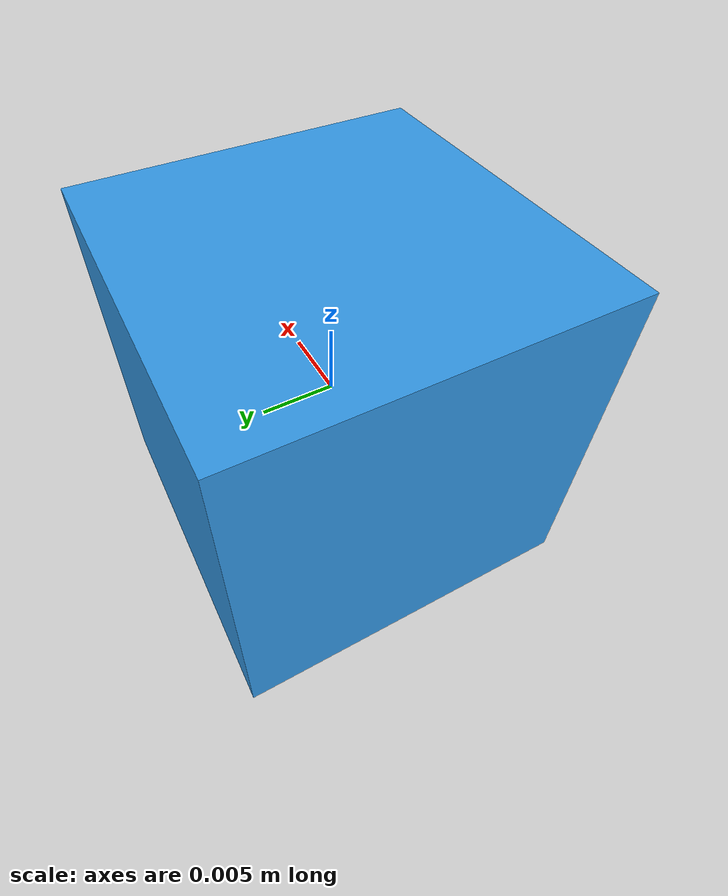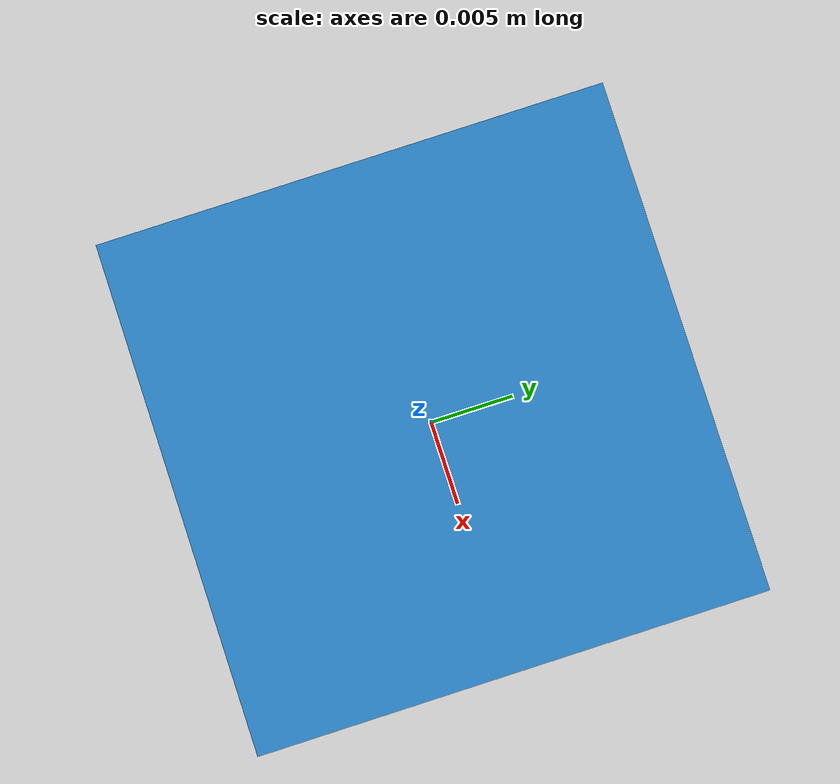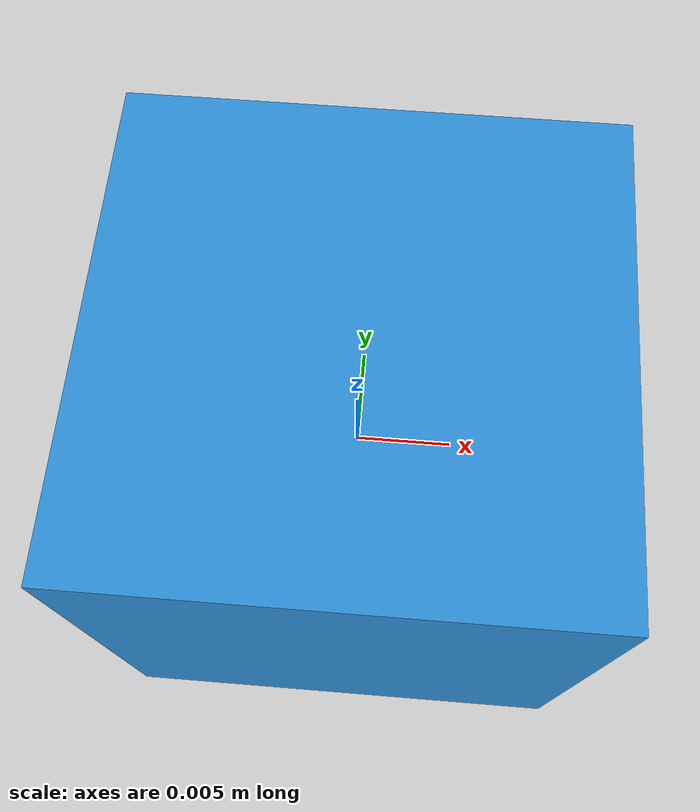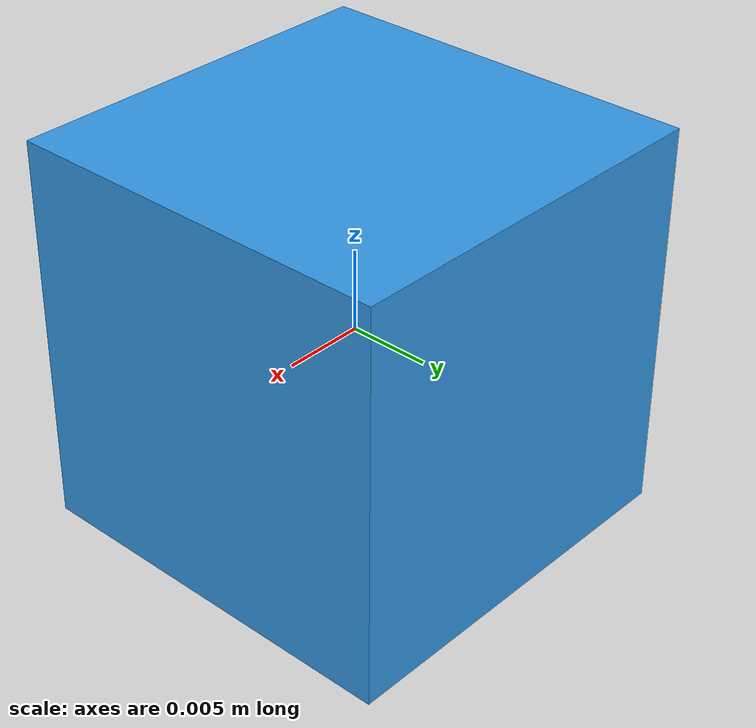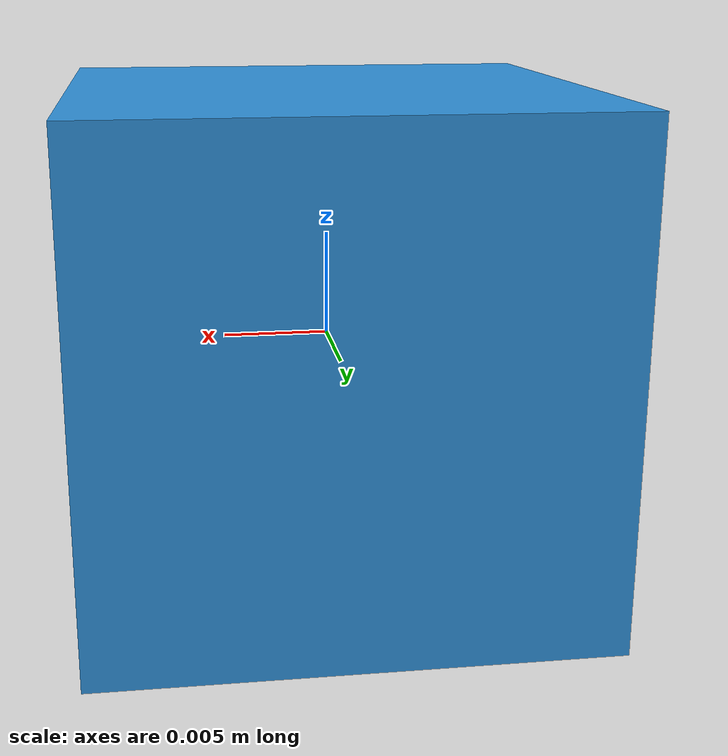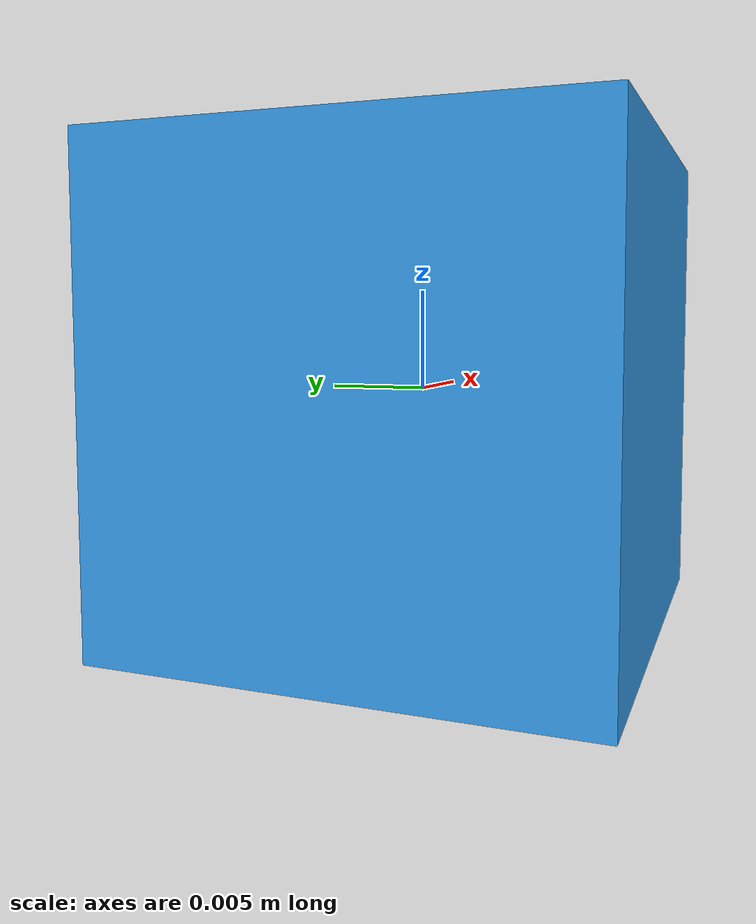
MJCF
<mujoco model="cube">
  <compiler angle="radian"/>
  <worldbody>
    <body name="cube">
      <freejoint name="free"/>
      <geom name="geom" type="box" size="0.012 0.012 0.012" density="500"
            rgba="0.2 0.6 0.9 1"/>
    </body>
  </worldbody>
</mujoco>
